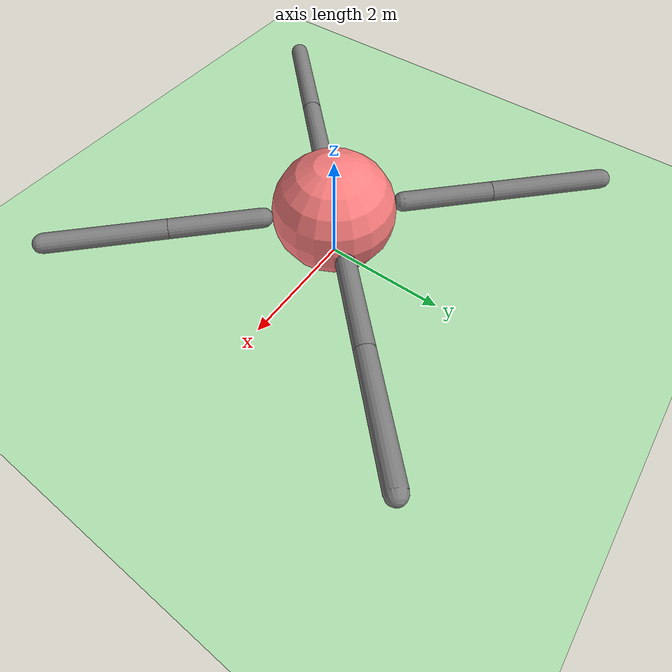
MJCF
<?xml version="1.0" ?>
<mujoco model="simple_quadruped">
  <option timestep="0.01"/>
  <default>
    <joint armature="1" damping="1" limited="true"/>
    <geom conaffinity="0" condim="3" density="5.0" friction="1 0.5 0.5" margin="0.01"/>
  </default>
  <worldbody>
    <geom conaffinity="1" condim="3" name="floor" pos="0 0 0" rgba="0.7 0.9 0.7 1" size="40 40 40" type="plane"/>
    <body name="torso" pos="0 0 1.0">
      <geom name="torso_geom" pos="0 0 0" size="1.0" type="sphere" rgba="1 0.5 0.5 1"/>
      <joint armature="0" damping="0" limited="false" margin="0.01" name="root" pos="0 0 0" type="free"/>
      <body name="front_left_leg" pos=" 0.8 0.8 0">
        <joint axis="0 0 1" name="hip_1" pos="0.0 0.0 0.0" range="-30 30" type="hinge"/>
        <geom fromto="0.0 0.0 0.0 1.04 1.04 0.0" name="front_left_leg_leg_geom" size="0.16" type="capsule"/>
        <body pos="1.04 1.04 0">
          <joint axis="-1 1 0" name="ankle_1" pos="0.0 0.0 0.0" range="30 70" type="hinge"/>
          <geom fromto="0.0 0.0 0.0 1.34 1.34 0.0" name="front_left_leg_ankle_geom" size="0.16" type="capsule"/>
        </body>
      </body>
      <body name="front_right_leg" pos=" -0.8 0.8 0">
        <joint axis="0 0 1" name="hip_2" pos="0.0 0.0 0.0" range="-30 30" type="hinge"/>
        <geom fromto="0.0 0.0 0.0 -1.04 1.04 0.0" name="front_right_leg_leg_geom" size="0.16" type="capsule"/>
        <body pos="-1.04 1.04 0">
          <joint axis="1 1 0" name="ankle_2" pos="0.0 0.0 0.0" range="-70 -30" type="hinge"/>
          <geom fromto="0.0 0.0 0.0 -1.34 1.34 0.0" name="front_right_leg_ankle_geom" size="0.16" type="capsule"/>
        </body>
      </body>
      <body name="back_left_leg" pos=" 0.8 -0.8 0">
        <joint axis="0 0 1" name="hip_3" pos="0.0 0.0 0.0" range="-30 30" type="hinge"/>
        <geom fromto="0.0 0.0 0.0 1.04 -1.04 0.0" name="back_left_leg_leg_geom" size="0.16" type="capsule"/>
        <body pos="1.04 -1.04 0">
          <joint axis="1 1 0" name="ankle_3" pos="0.0 0.0 0.0" range="30 70" type="hinge"/>
          <geom fromto="0.0 0.0 0.0 1.34 -1.34 0.0" name="back_left_leg_ankle_geom" size="0.16" type="capsule"/>
        </body>
      </body>
      <body name="back_right_leg" pos=" -0.8 -0.8 0">
        <joint axis="0 0 1" name="hip_4" pos="0.0 0.0 0.0" range="-30 30" type="hinge"/>
        <geom fromto="0.0 0.0 0.0 -1.04 -1.04 0.0" name="back_right_leg_leg_geom" size="0.16" type="capsule"/>
        <body pos="-1.04 -1.04 0">
          <joint axis="-1 1 0" name="ankle_4" pos="0.0 0.0 0.0" range="-70 -30" type="hinge"/>
          <geom fromto="0.0 0.0 0.0 -1.34 -1.34 0.0" name="back_right_leg_ankle_geom" size="0.16" type="capsule"/>
        </body>
      </body>
    </body>
  </worldbody>
  <actuator>
    <motor ctrllimited="true" ctrlrange="-1.0 1.0" joint="hip_1" gear="300"/>
    <motor ctrllimited="true" ctrlrange="-1.0 1.0" joint="ankle_1" gear="300"/>
    <motor ctrllimited="true" ctrlrange="-1.0 1.0" joint="hip_2" gear="300"/>
    <motor ctrllimited="true" ctrlrange="-1.0 1.0" joint="ankle_2" gear="300"/>
    <motor ctrllimited="true" ctrlrange="-1.0 1.0" joint="hip_3" gear="300"/>
    <motor ctrllimited="true" ctrlrange="-1.0 1.0" joint="ankle_3" gear="300"/>
    <motor ctrllimited="true" ctrlrange="-1.0 1.0" joint="hip_4" gear="300"/>
    <motor ctrllimited="true" ctrlrange="-1.0 1.0" joint="ankle_4" gear="300"/>
  </actuator>
</mujoco>
